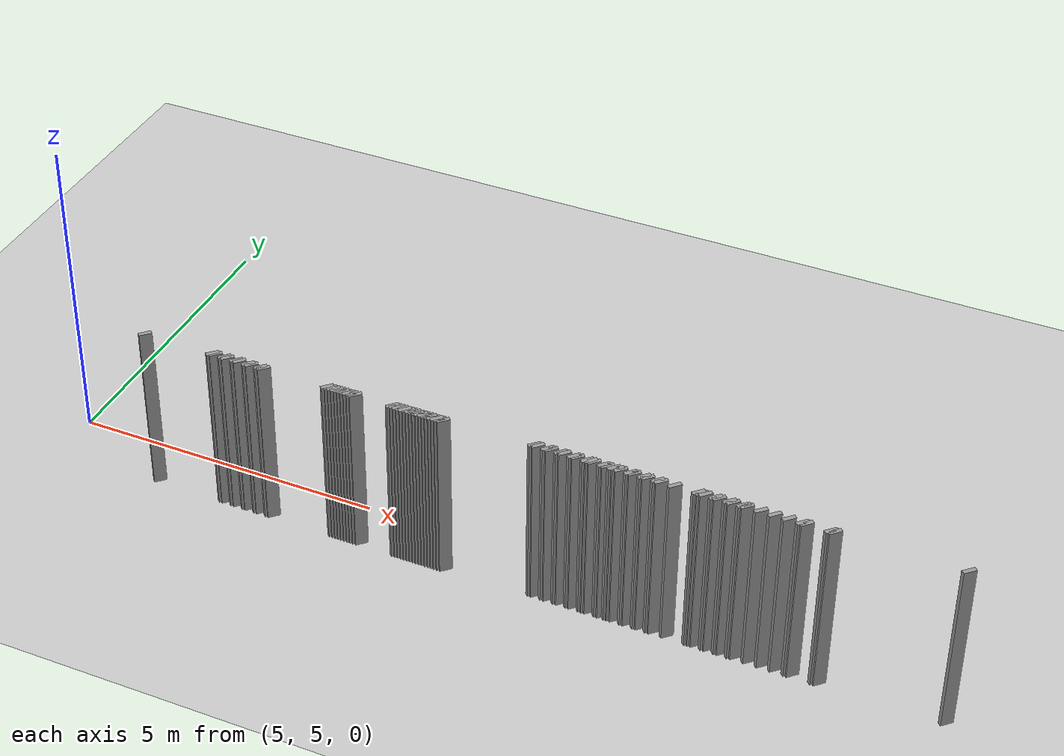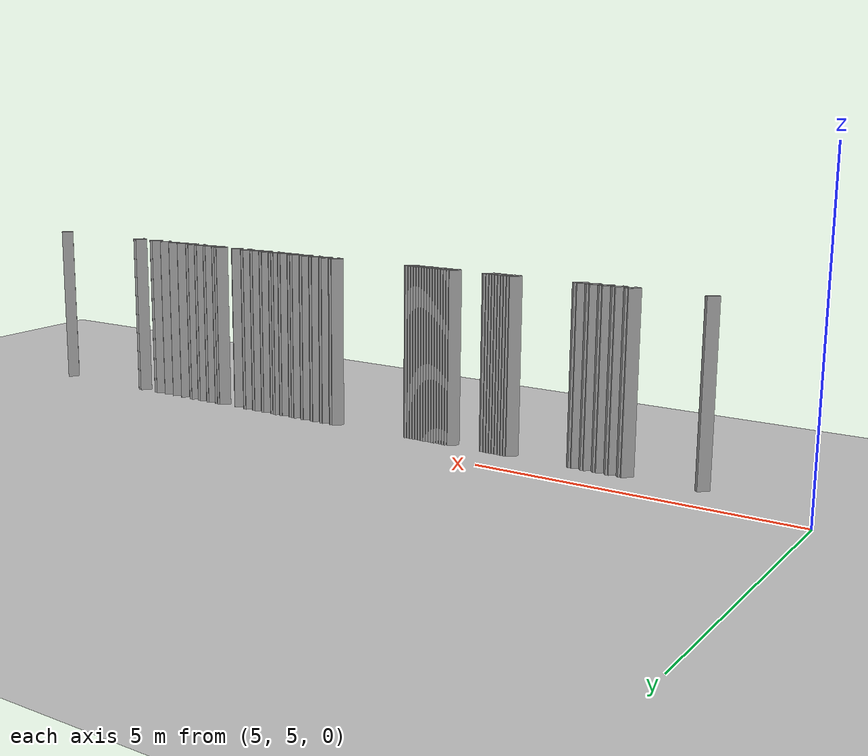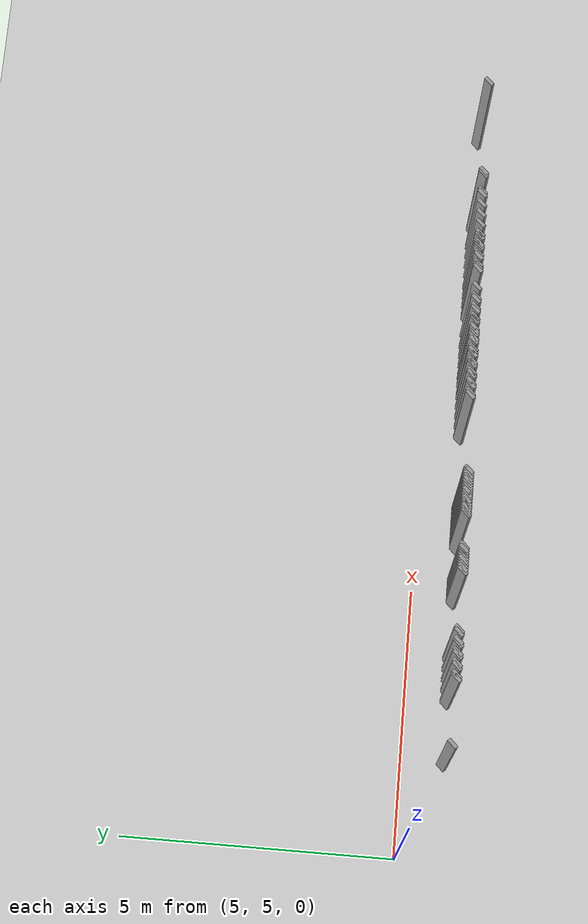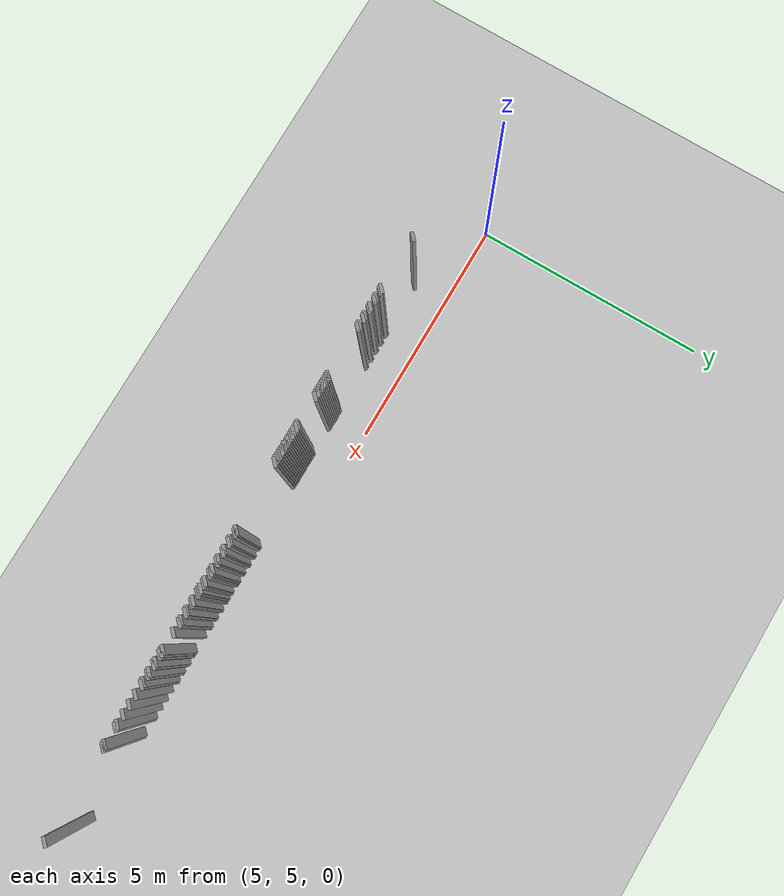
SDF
<sdf version="1.5">
 <world name="default">
  <include><uri>model://ground_plane</uri></include>
  <include><uri>model://sun</uri></include>
  <model name="grey_wall_2178">
   <static>1</static>
   <link name="link">
    <pose>13.05 4.3  1.4 0 0 -0.785398163397</pose>
    <collision name="collision"><geometry><box><size>0.0707106781187 .2  2.8</size></box></geometry></collision>
    <visual name="visual">
     <cast_shadows>0</cast_shadows>
     <geometry><box><size>0.0707106781187 .2  2.8</size></box></geometry>
     <material>
      <script>
       <uri>model://grey_wall/materials/scripts</uri>
       <uri>model://grey_wall/materials/textures</uri>
       <name>vrc/grey_wall</name>
      </script>
     </material>
    </visual>
   </link>
  </model>
  <model name="grey_wall_2179">
   <static>1</static>
   <link name="link">
    <pose>13.1 4.3  1.4 0 0 -0.785398163397</pose>
    <collision name="collision"><geometry><box><size>0.0707106781187 .2  2.8</size></box></geometry></collision>
    <visual name="visual">
     <cast_shadows>0</cast_shadows>
     <geometry><box><size>0.0707106781187 .2  2.8</size></box></geometry>
     <material>
      <script>
       <uri>model://grey_wall/materials/scripts</uri>
       <uri>model://grey_wall/materials/textures</uri>
       <name>vrc/grey_wall</name>
      </script>
     </material>
    </visual>
   </link>
  </model>
  <model name="grey_wall_2180">
   <static>1</static>
   <link name="link">
    <pose>13.25 4.3  1.4 0 0 -0.785398163397</pose>
    <collision name="collision"><geometry><box><size>0.0707106781187 .2  2.8</size></box></geometry></collision>
    <visual name="visual">
     <cast_shadows>0</cast_shadows>
     <geometry><box><size>0.0707106781187 .2  2.8</size></box></geometry>
     <material>
      <script>
       <uri>model://grey_wall/materials/scripts</uri>
       <uri>model://grey_wall/materials/textures</uri>
       <name>vrc/grey_wall</name>
      </script>
     </material>
    </visual>
   </link>
  </model>
  <model name="grey_wall_2181">
   <static>1</static>
   <link name="link">
    <pose>13.3 4.3  1.4 0 0 -0.785398163397</pose>
    <collision name="collision"><geometry><box><size>0.0707106781187 .2  2.8</size></box></geometry></collision>
    <visual name="visual">
     <cast_shadows>0</cast_shadows>
     <geometry><box><size>0.0707106781187 .2  2.8</size></box></geometry>
     <material>
      <script>
       <uri>model://grey_wall/materials/scripts</uri>
       <uri>model://grey_wall/materials/textures</uri>
       <name>vrc/grey_wall</name>
      </script>
     </material>
    </visual>
   </link>
  </model>
  <model name="grey_wall_2182">
   <static>1</static>
   <link name="link">
    <pose>13.45 4.3  1.4 0 0 -0.785398163397</pose>
    <collision name="collision"><geometry><box><size>0.0707106781187 .2  2.8</size></box></geometry></collision>
    <visual name="visual">
     <cast_shadows>0</cast_shadows>
     <geometry><box><size>0.0707106781187 .2  2.8</size></box></geometry>
     <material>
      <script>
       <uri>model://grey_wall/materials/scripts</uri>
       <uri>model://grey_wall/materials/textures</uri>
       <name>vrc/grey_wall</name>
      </script>
     </material>
    </visual>
   </link>
  </model>
  <model name="grey_wall_2183">
   <static>1</static>
   <link name="link">
    <pose>13.5 4.3  1.4 0 0 -0.785398163397</pose>
    <collision name="collision"><geometry><box><size>0.0707106781187 .2  2.8</size></box></geometry></collision>
    <visual name="visual">
     <cast_shadows>0</cast_shadows>
     <geometry><box><size>0.0707106781187 .2  2.8</size></box></geometry>
     <material>
      <script>
       <uri>model://grey_wall/materials/scripts</uri>
       <uri>model://grey_wall/materials/textures</uri>
       <name>vrc/grey_wall</name>
      </script>
     </material>
    </visual>
   </link>
  </model>
  <model name="grey_wall_2184">
   <static>1</static>
   <link name="link">
    <pose>13.65 4.3  1.4 0 0 -0.785398163397</pose>
    <collision name="collision"><geometry><box><size>0.0707106781187 .2  2.8</size></box></geometry></collision>
    <visual name="visual">
     <cast_shadows>0</cast_shadows>
     <geometry><box><size>0.0707106781187 .2  2.8</size></box></geometry>
     <material>
      <script>
       <uri>model://grey_wall/materials/scripts</uri>
       <uri>model://grey_wall/materials/textures</uri>
       <name>vrc/grey_wall</name>
      </script>
     </material>
    </visual>
   </link>
  </model>
  <model name="grey_wall_2185">
   <static>1</static>
   <link name="link">
    <pose>13.7 4.3  1.4 0 0 -0.785398163397</pose>
    <collision name="collision"><geometry><box><size>0.0707106781187 .2  2.8</size></box></geometry></collision>
    <visual name="visual">
     <cast_shadows>0</cast_shadows>
     <geometry><box><size>0.0707106781187 .2  2.8</size></box></geometry>
     <material>
      <script>
       <uri>model://grey_wall/materials/scripts</uri>
       <uri>model://grey_wall/materials/textures</uri>
       <name>vrc/grey_wall</name>
      </script>
     </material>
    </visual>
   </link>
  </model>
  <model name="grey_wall_2186">
   <static>1</static>
   <link name="link">
    <pose>13.85 4.3  1.4 0 0 -0.785398163397</pose>
    <collision name="collision"><geometry><box><size>0.0707106781187 .2  2.8</size></box></geometry></collision>
    <visual name="visual">
     <cast_shadows>0</cast_shadows>
     <geometry><box><size>0.0707106781187 .2  2.8</size></box></geometry>
     <material>
      <script>
       <uri>model://grey_wall/materials/scripts</uri>
       <uri>model://grey_wall/materials/textures</uri>
       <name>vrc/grey_wall</name>
      </script>
     </material>
    </visual>
   </link>
  </model>
  <model name="grey_wall_2187">
   <static>1</static>
   <link name="link">
    <pose>13.9 4.3  1.4 0 0 -0.785398163397</pose>
    <collision name="collision"><geometry><box><size>0.0707106781187 .2  2.8</size></box></geometry></collision>
    <visual name="visual">
     <cast_shadows>0</cast_shadows>
     <geometry><box><size>0.0707106781187 .2  2.8</size></box></geometry>
     <material>
      <script>
       <uri>model://grey_wall/materials/scripts</uri>
       <uri>model://grey_wall/materials/textures</uri>
       <name>vrc/grey_wall</name>
      </script>
     </material>
    </visual>
   </link>
  </model>
  <model name="grey_wall_2188">
   <static>1</static>
   <link name="link">
    <pose>13.95 4.3  1.4 0 0 -0.785398163397</pose>
    <collision name="collision"><geometry><box><size>0.0707106781187 .2  2.8</size></box></geometry></collision>
    <visual name="visual">
     <cast_shadows>0</cast_shadows>
     <geometry><box><size>0.0707106781187 .2  2.8</size></box></geometry>
     <material>
      <script>
       <uri>model://grey_wall/materials/scripts</uri>
       <uri>model://grey_wall/materials/textures</uri>
       <name>vrc/grey_wall</name>
      </script>
     </material>
    </visual>
   </link>
  </model>
  <model name="grey_wall_2189">
   <static>1</static>
   <link name="link">
    <pose>14.1 4.3  1.4 0 0 -0.785398163397</pose>
    <collision name="collision"><geometry><box><size>0.0707106781187 .2  2.8</size></box></geometry></collision>
    <visual name="visual">
     <cast_shadows>0</cast_shadows>
     <geometry><box><size>0.0707106781187 .2  2.8</size></box></geometry>
     <material>
      <script>
       <uri>model://grey_wall/materials/scripts</uri>
       <uri>model://grey_wall/materials/textures</uri>
       <name>vrc/grey_wall</name>
      </script>
     </material>
    </visual>
   </link>
  </model>
  <model name="grey_wall_2190">
   <static>1</static>
   <link name="link">
    <pose>14.15 4.3  1.4 0 0 -0.785398163397</pose>
    <collision name="collision"><geometry><box><size>0.0707106781187 .2  2.8</size></box></geometry></collision>
    <visual name="visual">
     <cast_shadows>0</cast_shadows>
     <geometry><box><size>0.0707106781187 .2  2.8</size></box></geometry>
     <material>
      <script>
       <uri>model://grey_wall/materials/scripts</uri>
       <uri>model://grey_wall/materials/textures</uri>
       <name>vrc/grey_wall</name>
      </script>
     </material>
    </visual>
   </link>
  </model>
  <model name="grey_wall_2191">
   <static>1</static>
   <link name="link">
    <pose>14.25 4.3  1.4 0 0 -0.785398163397</pose>
    <collision name="collision"><geometry><box><size>0.0707106781187 .2  2.8</size></box></geometry></collision>
    <visual name="visual">
     <cast_shadows>0</cast_shadows>
     <geometry><box><size>0.0707106781187 .2  2.8</size></box></geometry>
     <material>
      <script>
       <uri>model://grey_wall/materials/scripts</uri>
       <uri>model://grey_wall/materials/textures</uri>
       <name>vrc/grey_wall</name>
      </script>
     </material>
    </visual>
   </link>
  </model>
  <model name="grey_wall_2192">
   <static>1</static>
   <link name="link">
    <pose>14.3 4.3  1.4 0 0 -0.785398163397</pose>
    <collision name="collision"><geometry><box><size>0.0707106781187 .2  2.8</size></box></geometry></collision>
    <visual name="visual">
     <cast_shadows>0</cast_shadows>
     <geometry><box><size>0.0707106781187 .2  2.8</size></box></geometry>
     <material>
      <script>
       <uri>model://grey_wall/materials/scripts</uri>
       <uri>model://grey_wall/materials/textures</uri>
       <name>vrc/grey_wall</name>
      </script>
     </material>
    </visual>
   </link>
  </model>
  <model name="grey_wall_2193">
   <static>1</static>
   <link name="link">
    <pose>14.35 4.3  1.4 0 0 -0.785398163397</pose>
    <collision name="collision"><geometry><box><size>0.0707106781187 .2  2.8</size></box></geometry></collision>
    <visual name="visual">
     <cast_shadows>0</cast_shadows>
     <geometry><box><size>0.0707106781187 .2  2.8</size></box></geometry>
     <material>
      <script>
       <uri>model://grey_wall/materials/scripts</uri>
       <uri>model://grey_wall/materials/textures</uri>
       <name>vrc/grey_wall</name>
      </script>
     </material>
    </visual>
   </link>
  </model>
  <model name="grey_wall_2194">
   <static>1</static>
   <link name="link">
    <pose>14.5 4.3  1.4 0 0 -0.785398163397</pose>
    <collision name="collision"><geometry><box><size>0.0707106781187 .2  2.8</size></box></geometry></collision>
    <visual name="visual">
     <cast_shadows>0</cast_shadows>
     <geometry><box><size>0.0707106781187 .2  2.8</size></box></geometry>
     <material>
      <script>
       <uri>model://grey_wall/materials/scripts</uri>
       <uri>model://grey_wall/materials/textures</uri>
       <name>vrc/grey_wall</name>
      </script>
     </material>
    </visual>
   </link>
  </model>
  <model name="grey_wall_2195">
   <static>1</static>
   <link name="link">
    <pose>14.55 4.3  1.4 0 0 -0.785398163397</pose>
    <collision name="collision"><geometry><box><size>0.0707106781187 .2  2.8</size></box></geometry></collision>
    <visual name="visual">
     <cast_shadows>0</cast_shadows>
     <geometry><box><size>0.0707106781187 .2  2.8</size></box></geometry>
     <material>
      <script>
       <uri>model://grey_wall/materials/scripts</uri>
       <uri>model://grey_wall/materials/textures</uri>
       <name>vrc/grey_wall</name>
      </script>
     </material>
    </visual>
   </link>
  </model>
  <model name="grey_wall_2196">
   <static>1</static>
   <link name="link">
    <pose>14.7 4.3  1.4 0 0 -0.785398163397</pose>
    <collision name="collision"><geometry><box><size>0.0707106781187 .2  2.8</size></box></geometry></collision>
    <visual name="visual">
     <cast_shadows>0</cast_shadows>
     <geometry><box><size>0.0707106781187 .2  2.8</size></box></geometry>
     <material>
      <script>
       <uri>model://grey_wall/materials/scripts</uri>
       <uri>model://grey_wall/materials/textures</uri>
       <name>vrc/grey_wall</name>
      </script>
     </material>
    </visual>
   </link>
  </model>
  <model name="grey_wall_2197">
   <static>1</static>
   <link name="link">
    <pose>14.75 4.3  1.4 0 0 -0.785398163397</pose>
    <collision name="collision"><geometry><box><size>0.0707106781187 .2  2.8</size></box></geometry></collision>
    <visual name="visual">
     <cast_shadows>0</cast_shadows>
     <geometry><box><size>0.0707106781187 .2  2.8</size></box></geometry>
     <material>
      <script>
       <uri>model://grey_wall/materials/scripts</uri>
       <uri>model://grey_wall/materials/textures</uri>
       <name>vrc/grey_wall</name>
      </script>
     </material>
    </visual>
   </link>
  </model>
  <model name="grey_wall_2198">
   <static>1</static>
   <link name="link">
    <pose>14.9 4.3  1.4 0 0 -0.785398163397</pose>
    <collision name="collision"><geometry><box><size>0.0707106781187 .2  2.8</size></box></geometry></collision>
    <visual name="visual">
     <cast_shadows>0</cast_shadows>
     <geometry><box><size>0.0707106781187 .2  2.8</size></box></geometry>
     <material>
      <script>
       <uri>model://grey_wall/materials/scripts</uri>
       <uri>model://grey_wall/materials/textures</uri>
       <name>vrc/grey_wall</name>
      </script>
     </material>
    </visual>
   </link>
  </model>
  <model name="grey_wall_2199">
   <static>1</static>
   <link name="link">
    <pose>14.95 4.3  1.4 0 0 -0.785398163397</pose>
    <collision name="collision"><geometry><box><size>0.0707106781187 .2  2.8</size></box></geometry></collision>
    <visual name="visual">
     <cast_shadows>0</cast_shadows>
     <geometry><box><size>0.0707106781187 .2  2.8</size></box></geometry>
     <material>
      <script>
       <uri>model://grey_wall/materials/scripts</uri>
       <uri>model://grey_wall/materials/textures</uri>
       <name>vrc/grey_wall</name>
      </script>
     </material>
    </visual>
   </link>
  </model>
  <model name="grey_wall_2200">
   <static>1</static>
   <link name="link">
    <pose>15.15 4.3  1.4 0 0 -0.785398163397</pose>
    <collision name="collision"><geometry><box><size>0.0707106781187 .2  2.8</size></box></geometry></collision>
    <visual name="visual">
     <cast_shadows>0</cast_shadows>
     <geometry><box><size>0.0707106781187 .2  2.8</size></box></geometry>
     <material>
      <script>
       <uri>model://grey_wall/materials/scripts</uri>
       <uri>model://grey_wall/materials/textures</uri>
       <name>vrc/grey_wall</name>
      </script>
     </material>
    </visual>
   </link>
  </model>
  <model name="grey_wall_2201">
   <static>1</static>
   <link name="link">
    <pose>15.5 4.3  1.4 0 0 -0.785398163397</pose>
    <collision name="collision"><geometry><box><size>0.0707106781187 .2  2.8</size></box></geometry></collision>
    <visual name="visual">
     <cast_shadows>0</cast_shadows>
     <geometry><box><size>0.0707106781187 .2  2.8</size></box></geometry>
     <material>
      <script>
       <uri>model://grey_wall/materials/scripts</uri>
       <uri>model://grey_wall/materials/textures</uri>
       <name>vrc/grey_wall</name>
      </script>
     </material>
    </visual>
   </link>
  </model>
  <model name="grey_wall_2202">
   <static>1</static>
   <link name="link">
    <pose>15.55 4.3  1.4 0 0 -0.785398163397</pose>
    <collision name="collision"><geometry><box><size>0.0707106781187 .2  2.8</size></box></geometry></collision>
    <visual name="visual">
     <cast_shadows>0</cast_shadows>
     <geometry><box><size>0.0707106781187 .2  2.8</size></box></geometry>
     <material>
      <script>
       <uri>model://grey_wall/materials/scripts</uri>
       <uri>model://grey_wall/materials/textures</uri>
       <name>vrc/grey_wall</name>
      </script>
     </material>
    </visual>
   </link>
  </model>
  <model name="grey_wall_2203">
   <static>1</static>
   <link name="link">
    <pose>15.6 4.3  1.4 0 0 -0.785398163397</pose>
    <collision name="collision"><geometry><box><size>0.0707106781187 .2  2.8</size></box></geometry></collision>
    <visual name="visual">
     <cast_shadows>0</cast_shadows>
     <geometry><box><size>0.0707106781187 .2  2.8</size></box></geometry>
     <material>
      <script>
       <uri>model://grey_wall/materials/scripts</uri>
       <uri>model://grey_wall/materials/textures</uri>
       <name>vrc/grey_wall</name>
      </script>
     </material>
    </visual>
   </link>
  </model>
  <model name="grey_wall_2204">
   <static>1</static>
   <link name="link">
    <pose>15.75 4.3  1.4 0 0 -0.785398163397</pose>
    <collision name="collision"><geometry><box><size>0.0707106781187 .2  2.8</size></box></geometry></collision>
    <visual name="visual">
     <cast_shadows>0</cast_shadows>
     <geometry><box><size>0.0707106781187 .2  2.8</size></box></geometry>
     <material>
      <script>
       <uri>model://grey_wall/materials/scripts</uri>
       <uri>model://grey_wall/materials/textures</uri>
       <name>vrc/grey_wall</name>
      </script>
     </material>
    </visual>
   </link>
  </model>
  <model name="grey_wall_2205">
   <static>1</static>
   <link name="link">
    <pose>15.8 4.3  1.4 0 0 -0.785398163397</pose>
    <collision name="collision"><geometry><box><size>0.0707106781187 .2  2.8</size></box></geometry></collision>
    <visual name="visual">
     <cast_shadows>0</cast_shadows>
     <geometry><box><size>0.0707106781187 .2  2.8</size></box></geometry>
     <material>
      <script>
       <uri>model://grey_wall/materials/scripts</uri>
       <uri>model://grey_wall/materials/textures</uri>
       <name>vrc/grey_wall</name>
      </script>
     </material>
    </visual>
   </link>
  </model>
  <model name="grey_wall_2206">
   <static>1</static>
   <link name="link">
    <pose>15.95 4.3  1.4 0 0 -0.785398163397</pose>
    <collision name="collision"><geometry><box><size>0.0707106781187 .2  2.8</size></box></geometry></collision>
    <visual name="visual">
     <cast_shadows>0</cast_shadows>
     <geometry><box><size>0.0707106781187 .2  2.8</size></box></geometry>
     <material>
      <script>
       <uri>model://grey_wall/materials/scripts</uri>
       <uri>model://grey_wall/materials/textures</uri>
       <name>vrc/grey_wall</name>
      </script>
     </material>
    </visual>
   </link>
  </model>
  <model name="grey_wall_2207">
   <static>1</static>
   <link name="link">
    <pose>16.0 4.3  1.4 0 0 -0.785398163397</pose>
    <collision name="collision"><geometry><box><size>0.0707106781187 .2  2.8</size></box></geometry></collision>
    <visual name="visual">
     <cast_shadows>0</cast_shadows>
     <geometry><box><size>0.0707106781187 .2  2.8</size></box></geometry>
     <material>
      <script>
       <uri>model://grey_wall/materials/scripts</uri>
       <uri>model://grey_wall/materials/textures</uri>
       <name>vrc/grey_wall</name>
      </script>
     </material>
    </visual>
   </link>
  </model>
  <model name="grey_wall_2208">
   <static>1</static>
   <link name="link">
    <pose>16.15 4.3  1.4 0 0 -0.785398163397</pose>
    <collision name="collision"><geometry><box><size>0.0707106781187 .2  2.8</size></box></geometry></collision>
    <visual name="visual">
     <cast_shadows>0</cast_shadows>
     <geometry><box><size>0.0707106781187 .2  2.8</size></box></geometry>
     <material>
      <script>
       <uri>model://grey_wall/materials/scripts</uri>
       <uri>model://grey_wall/materials/textures</uri>
       <name>vrc/grey_wall</name>
      </script>
     </material>
    </visual>
   </link>
  </model>
  <model name="grey_wall_2209">
   <static>1</static>
   <link name="link">
    <pose>16.2 4.3  1.4 0 0 -0.785398163397</pose>
    <collision name="collision"><geometry><box><size>0.0707106781187 .2  2.8</size></box></geometry></collision>
    <visual name="visual">
     <cast_shadows>0</cast_shadows>
     <geometry><box><size>0.0707106781187 .2  2.8</size></box></geometry>
     <material>
      <script>
       <uri>model://grey_wall/materials/scripts</uri>
       <uri>model://grey_wall/materials/textures</uri>
       <name>vrc/grey_wall</name>
      </script>
     </material>
    </visual>
   </link>
  </model>
  <model name="grey_wall_2210">
   <static>1</static>
   <link name="link">
    <pose>16.4 4.3  1.4 0 0 -0.785398163397</pose>
    <collision name="collision"><geometry><box><size>0.0707106781187 .2  2.8</size></box></geometry></collision>
    <visual name="visual">
     <cast_shadows>0</cast_shadows>
     <geometry><box><size>0.0707106781187 .2  2.8</size></box></geometry>
     <material>
      <script>
       <uri>model://grey_wall/materials/scripts</uri>
       <uri>model://grey_wall/materials/textures</uri>
       <name>vrc/grey_wall</name>
      </script>
     </material>
    </visual>
   </link>
  </model>
  <model name="grey_wall_2211">
   <static>1</static>
   <link name="link">
    <pose>16.6 4.3  1.4 0 0 -0.785398163397</pose>
    <collision name="collision"><geometry><box><size>0.0707106781187 .2  2.8</size></box></geometry></collision>
    <visual name="visual">
     <cast_shadows>0</cast_shadows>
     <geometry><box><size>0.0707106781187 .2  2.8</size></box></geometry>
     <material>
      <script>
       <uri>model://grey_wall/materials/scripts</uri>
       <uri>model://grey_wall/materials/textures</uri>
       <name>vrc/grey_wall</name>
      </script>
     </material>
    </visual>
   </link>
  </model>
  <model name="grey_wall_2212">
   <static>1</static>
   <link name="link">
    <pose>16.8 4.3  1.4 0 0 -0.785398163397</pose>
    <collision name="collision"><geometry><box><size>0.0707106781187 .2  2.8</size></box></geometry></collision>
    <visual name="visual">
     <cast_shadows>0</cast_shadows>
     <geometry><box><size>0.0707106781187 .2  2.8</size></box></geometry>
     <material>
      <script>
       <uri>model://grey_wall/materials/scripts</uri>
       <uri>model://grey_wall/materials/textures</uri>
       <name>vrc/grey_wall</name>
      </script>
     </material>
    </visual>
   </link>
  </model>
  <model name="grey_wall_2213">
   <static>1</static>
   <link name="link">
    <pose>17.0 4.3  1.4 0 0 -0.785398163397</pose>
    <collision name="collision"><geometry><box><size>0.0707106781187 .2  2.8</size></box></geometry></collision>
    <visual name="visual">
     <cast_shadows>0</cast_shadows>
     <geometry><box><size>0.0707106781187 .2  2.8</size></box></geometry>
     <material>
      <script>
       <uri>model://grey_wall/materials/scripts</uri>
       <uri>model://grey_wall/materials/textures</uri>
       <name>vrc/grey_wall</name>
      </script>
     </material>
    </visual>
   </link>
  </model>
  <model name="grey_wall_2214">
   <static>1</static>
   <link name="link">
    <pose>17.05 4.3  1.4 0 0 -0.785398163397</pose>
    <collision name="collision"><geometry><box><size>0.0707106781187 .2  2.8</size></box></geometry></collision>
    <visual name="visual">
     <cast_shadows>0</cast_shadows>
     <geometry><box><size>0.0707106781187 .2  2.8</size></box></geometry>
     <material>
      <script>
       <uri>model://grey_wall/materials/scripts</uri>
       <uri>model://grey_wall/materials/textures</uri>
       <name>vrc/grey_wall</name>
      </script>
     </material>
    </visual>
   </link>
  </model>
  <model name="grey_wall_2215">
   <static>1</static>
   <link name="link">
    <pose>17.4 4.3  1.4 0 0 -0.785398163397</pose>
    <collision name="collision"><geometry><box><size>0.0707106781187 .2  2.8</size></box></geometry></collision>
    <visual name="visual">
     <cast_shadows>0</cast_shadows>
     <geometry><box><size>0.0707106781187 .2  2.8</size></box></geometry>
     <material>
      <script>
       <uri>model://grey_wall/materials/scripts</uri>
       <uri>model://grey_wall/materials/textures</uri>
       <name>vrc/grey_wall</name>
      </script>
     </material>
    </visual>
   </link>
  </model>
  <model name="grey_wall_2216">
   <static>1</static>
   <link name="link">
    <pose>17.45 4.3  1.4 0 0 -0.785398163397</pose>
    <collision name="collision"><geometry><box><size>0.0707106781187 .2  2.8</size></box></geometry></collision>
    <visual name="visual">
     <cast_shadows>0</cast_shadows>
     <geometry><box><size>0.0707106781187 .2  2.8</size></box></geometry>
     <material>
      <script>
       <uri>model://grey_wall/materials/scripts</uri>
       <uri>model://grey_wall/materials/textures</uri>
       <name>vrc/grey_wall</name>
      </script>
     </material>
    </visual>
   </link>
  </model>
  <model name="grey_wall_2217">
   <static>1</static>
   <link name="link">
    <pose>19.3 4.3  1.4 0 0 -0.785398163397</pose>
    <collision name="collision"><geometry><box><size>0.0707106781187 .2  2.8</size></box></geometry></collision>
    <visual name="visual">
     <cast_shadows>0</cast_shadows>
     <geometry><box><size>0.0707106781187 .2  2.8</size></box></geometry>
     <material>
      <script>
       <uri>model://grey_wall/materials/scripts</uri>
       <uri>model://grey_wall/materials/textures</uri>
       <name>vrc/grey_wall</name>
      </script>
     </material>
    </visual>
   </link>
  </model>
  <model name="grey_wall_2218">
   <static>1</static>
   <link name="link">
    <pose>6.75 4.25  1.4 0 0 -0.785398163397</pose>
    <collision name="collision"><geometry><box><size>0.0707106781187 .2  2.8</size></box></geometry></collision>
    <visual name="visual">
     <cast_shadows>0</cast_shadows>
     <geometry><box><size>0.0707106781187 .2  2.8</size></box></geometry>
     <material>
      <script>
       <uri>model://grey_wall/materials/scripts</uri>
       <uri>model://grey_wall/materials/textures</uri>
       <name>vrc/grey_wall</name>
      </script>
     </material>
    </visual>
   </link>
  </model>
  <model name="grey_wall_2219">
   <static>1</static>
   <link name="link">
    <pose>7.9 4.25  1.4 0 0 -0.785398163397</pose>
    <collision name="collision"><geometry><box><size>0.0707106781187 .2  2.8</size></box></geometry></collision>
    <visual name="visual">
     <cast_shadows>0</cast_shadows>
     <geometry><box><size>0.0707106781187 .2  2.8</size></box></geometry>
     <material>
      <script>
       <uri>model://grey_wall/materials/scripts</uri>
       <uri>model://grey_wall/materials/textures</uri>
       <name>vrc/grey_wall</name>
      </script>
     </material>
    </visual>
   </link>
  </model>
  <model name="grey_wall_2220">
   <static>1</static>
   <link name="link">
    <pose>7.95 4.25  1.4 0 0 -0.785398163397</pose>
    <collision name="collision"><geometry><box><size>0.0707106781187 .2  2.8</size></box></geometry></collision>
    <visual name="visual">
     <cast_shadows>0</cast_shadows>
     <geometry><box><size>0.0707106781187 .2  2.8</size></box></geometry>
     <material>
      <script>
       <uri>model://grey_wall/materials/scripts</uri>
       <uri>model://grey_wall/materials/textures</uri>
       <name>vrc/grey_wall</name>
      </script>
     </material>
    </visual>
   </link>
  </model>
  <model name="grey_wall_2221">
   <static>1</static>
   <link name="link">
    <pose>8.1 4.25  1.4 0 0 -0.785398163397</pose>
    <collision name="collision"><geometry><box><size>0.0707106781187 .2  2.8</size></box></geometry></collision>
    <visual name="visual">
     <cast_shadows>0</cast_shadows>
     <geometry><box><size>0.0707106781187 .2  2.8</size></box></geometry>
     <material>
      <script>
       <uri>model://grey_wall/materials/scripts</uri>
       <uri>model://grey_wall/materials/textures</uri>
       <name>vrc/grey_wall</name>
      </script>
     </material>
    </visual>
   </link>
  </model>
  <model name="grey_wall_2222">
   <static>1</static>
   <link name="link">
    <pose>8.15 4.25  1.4 0 0 -0.785398163397</pose>
    <collision name="collision"><geometry><box><size>0.0707106781187 .2  2.8</size></box></geometry></collision>
    <visual name="visual">
     <cast_shadows>0</cast_shadows>
     <geometry><box><size>0.0707106781187 .2  2.8</size></box></geometry>
     <material>
      <script>
       <uri>model://grey_wall/materials/scripts</uri>
       <uri>model://grey_wall/materials/textures</uri>
       <name>vrc/grey_wall</name>
      </script>
     </material>
    </visual>
   </link>
  </model>
  <model name="grey_wall_2223">
   <static>1</static>
   <link name="link">
    <pose>8.3 4.25  1.4 0 0 -0.785398163397</pose>
    <collision name="collision"><geometry><box><size>0.0707106781187 .2  2.8</size></box></geometry></collision>
    <visual name="visual">
     <cast_shadows>0</cast_shadows>
     <geometry><box><size>0.0707106781187 .2  2.8</size></box></geometry>
     <material>
      <script>
       <uri>model://grey_wall/materials/scripts</uri>
       <uri>model://grey_wall/materials/textures</uri>
       <name>vrc/grey_wall</name>
      </script>
     </material>
    </visual>
   </link>
  </model>
  <model name="grey_wall_2224">
   <static>1</static>
   <link name="link">
    <pose>8.35 4.25  1.4 0 0 -0.785398163397</pose>
    <collision name="collision"><geometry><box><size>0.0707106781187 .2  2.8</size></box></geometry></collision>
    <visual name="visual">
     <cast_shadows>0</cast_shadows>
     <geometry><box><size>0.0707106781187 .2  2.8</size></box></geometry>
     <material>
      <script>
       <uri>model://grey_wall/materials/scripts</uri>
       <uri>model://grey_wall/materials/textures</uri>
       <name>vrc/grey_wall</name>
      </script>
     </material>
    </visual>
   </link>
  </model>
  <model name="grey_wall_2225">
   <static>1</static>
   <link name="link">
    <pose>8.5 4.25  1.4 0 0 -0.785398163397</pose>
    <collision name="collision"><geometry><box><size>0.0707106781187 .2  2.8</size></box></geometry></collision>
    <visual name="visual">
     <cast_shadows>0</cast_shadows>
     <geometry><box><size>0.0707106781187 .2  2.8</size></box></geometry>
     <material>
      <script>
       <uri>model://grey_wall/materials/scripts</uri>
       <uri>model://grey_wall/materials/textures</uri>
       <name>vrc/grey_wall</name>
      </script>
     </material>
    </visual>
   </link>
  </model>
  <model name="grey_wall_2226">
   <static>1</static>
   <link name="link">
    <pose>8.55 4.25  1.4 0 0 -0.785398163397</pose>
    <collision name="collision"><geometry><box><size>0.0707106781187 .2  2.8</size></box></geometry></collision>
    <visual name="visual">
     <cast_shadows>0</cast_shadows>
     <geometry><box><size>0.0707106781187 .2  2.8</size></box></geometry>
     <material>
      <script>
       <uri>model://grey_wall/materials/scripts</uri>
       <uri>model://grey_wall/materials/textures</uri>
       <name>vrc/grey_wall</name>
      </script>
     </material>
    </visual>
   </link>
  </model>
  <model name="grey_wall_2227">
   <static>1</static>
   <link name="link">
    <pose>8.7 4.25  1.4 0 0 -0.785398163397</pose>
    <collision name="collision"><geometry><box><size>0.0707106781187 .2  2.8</size></box></geometry></collision>
    <visual name="visual">
     <cast_shadows>0</cast_shadows>
     <geometry><box><size>0.0707106781187 .2  2.8</size></box></geometry>
     <material>
      <script>
       <uri>model://grey_wall/materials/scripts</uri>
       <uri>model://grey_wall/materials/textures</uri>
       <name>vrc/grey_wall</name>
      </script>
     </material>
    </visual>
   </link>
  </model>
  <model name="grey_wall_2228">
   <static>1</static>
   <link name="link">
    <pose>8.75 4.25  1.4 0 0 -0.785398163397</pose>
    <collision name="collision"><geometry><box><size>0.0707106781187 .2  2.8</size></box></geometry></collision>
    <visual name="visual">
     <cast_shadows>0</cast_shadows>
     <geometry><box><size>0.0707106781187 .2  2.8</size></box></geometry>
     <material>
      <script>
       <uri>model://grey_wall/materials/scripts</uri>
       <uri>model://grey_wall/materials/textures</uri>
       <name>vrc/grey_wall</name>
      </script>
     </material>
    </visual>
   </link>
  </model>
  <model name="grey_wall_2229">
   <static>1</static>
   <link name="link">
    <pose>9.8 4.25  1.4 0 0 -0.785398163397</pose>
    <collision name="collision"><geometry><box><size>0.0707106781187 .2  2.8</size></box></geometry></collision>
    <visual name="visual">
     <cast_shadows>0</cast_shadows>
     <geometry><box><size>0.0707106781187 .2  2.8</size></box></geometry>
     <material>
      <script>
       <uri>model://grey_wall/materials/scripts</uri>
       <uri>model://grey_wall/materials/textures</uri>
       <name>vrc/grey_wall</name>
      </script>
     </material>
    </visual>
   </link>
  </model>
  <model name="grey_wall_2230">
   <static>1</static>
   <link name="link">
    <pose>9.85 4.25  1.4 0 0 -0.785398163397</pose>
    <collision name="collision"><geometry><box><size>0.0707106781187 .2  2.8</size></box></geometry></collision>
    <visual name="visual">
     <cast_shadows>0</cast_shadows>
     <geometry><box><size>0.0707106781187 .2  2.8</size></box></geometry>
     <material>
      <script>
       <uri>model://grey_wall/materials/scripts</uri>
       <uri>model://grey_wall/materials/textures</uri>
       <name>vrc/grey_wall</name>
      </script>
     </material>
    </visual>
   </link>
  </model>
  <model name="grey_wall_2231">
   <static>1</static>
   <link name="link">
    <pose>9.9 4.25  1.4 0 0 -0.785398163397</pose>
    <collision name="collision"><geometry><box><size>0.0707106781187 .2  2.8</size></box></geometry></collision>
    <visual name="visual">
     <cast_shadows>0</cast_shadows>
     <geometry><box><size>0.0707106781187 .2  2.8</size></box></geometry>
     <material>
      <script>
       <uri>model://grey_wall/materials/scripts</uri>
       <uri>model://grey_wall/materials/textures</uri>
       <name>vrc/grey_wall</name>
      </script>
     </material>
    </visual>
   </link>
  </model>
  <model name="grey_wall_2232">
   <static>1</static>
   <link name="link">
    <pose>9.95 4.25  1.4 0 0 -0.785398163397</pose>
    <collision name="collision"><geometry><box><size>0.0707106781187 .2  2.8</size></box></geometry></collision>
    <visual name="visual">
     <cast_shadows>0</cast_shadows>
     <geometry><box><size>0.0707106781187 .2  2.8</size></box></geometry>
     <material>
      <script>
       <uri>model://grey_wall/materials/scripts</uri>
       <uri>model://grey_wall/materials/textures</uri>
       <name>vrc/grey_wall</name>
      </script>
     </material>
    </visual>
   </link>
  </model>
  <model name="grey_wall_2233">
   <static>1</static>
   <link name="link">
    <pose>10.0 4.25  1.4 0 0 -0.785398163397</pose>
    <collision name="collision"><geometry><box><size>0.0707106781187 .2  2.8</size></box></geometry></collision>
    <visual name="visual">
     <cast_shadows>0</cast_shadows>
     <geometry><box><size>0.0707106781187 .2  2.8</size></box></geometry>
     <material>
      <script>
       <uri>model://grey_wall/materials/scripts</uri>
       <uri>model://grey_wall/materials/textures</uri>
       <name>vrc/grey_wall</name>
      </script>
     </material>
    </visual>
   </link>
  </model>
  <model name="grey_wall_2234">
   <static>1</static>
   <link name="link">
    <pose>10.05 4.25  1.4 0 0 -0.785398163397</pose>
    <collision name="collision"><geometry><box><size>0.0707106781187 .2  2.8</size></box></geometry></collision>
    <visual name="visual">
     <cast_shadows>0</cast_shadows>
     <geometry><box><size>0.0707106781187 .2  2.8</size></box></geometry>
     <material>
      <script>
       <uri>model://grey_wall/materials/scripts</uri>
       <uri>model://grey_wall/materials/textures</uri>
       <name>vrc/grey_wall</name>
      </script>
     </material>
    </visual>
   </link>
  </model>
  <model name="grey_wall_2235">
   <static>1</static>
   <link name="link">
    <pose>10.1 4.25  1.4 0 0 -0.785398163397</pose>
    <collision name="collision"><geometry><box><size>0.0707106781187 .2  2.8</size></box></geometry></collision>
    <visual name="visual">
     <cast_shadows>0</cast_shadows>
     <geometry><box><size>0.0707106781187 .2  2.8</size></box></geometry>
     <material>
      <script>
       <uri>model://grey_wall/materials/scripts</uri>
       <uri>model://grey_wall/materials/textures</uri>
       <name>vrc/grey_wall</name>
      </script>
     </material>
    </visual>
   </link>
  </model>
  <model name="grey_wall_2236">
   <static>1</static>
   <link name="link">
    <pose>10.15 4.25  1.4 0 0 -0.785398163397</pose>
    <collision name="collision"><geometry><box><size>0.0707106781187 .2  2.8</size></box></geometry></collision>
    <visual name="visual">
     <cast_shadows>0</cast_shadows>
     <geometry><box><size>0.0707106781187 .2  2.8</size></box></geometry>
     <material>
      <script>
       <uri>model://grey_wall/materials/scripts</uri>
       <uri>model://grey_wall/materials/textures</uri>
       <name>vrc/grey_wall</name>
      </script>
     </material>
    </visual>
   </link>
  </model>
  <model name="grey_wall_2237">
   <static>1</static>
   <link name="link">
    <pose>10.2 4.25  1.4 0 0 -0.785398163397</pose>
    <collision name="collision"><geometry><box><size>0.0707106781187 .2  2.8</size></box></geometry></collision>
    <visual name="visual">
     <cast_shadows>0</cast_shadows>
     <geometry><box><size>0.0707106781187 .2  2.8</size></box></geometry>
     <material>
      <script>
       <uri>model://grey_wall/materials/scripts</uri>
       <uri>model://grey_wall/materials/textures</uri>
       <name>vrc/grey_wall</name>
      </script>
     </material>
    </visual>
   </link>
  </model>
  <model name="grey_wall_2238">
   <static>1</static>
   <link name="link">
    <pose>10.25 4.25  1.4 0 0 -0.785398163397</pose>
    <collision name="collision"><geometry><box><size>0.0707106781187 .2  2.8</size></box></geometry></collision>
    <visual name="visual">
     <cast_shadows>0</cast_shadows>
     <geometry><box><size>0.0707106781187 .2  2.8</size></box></geometry>
     <material>
      <script>
       <uri>model://grey_wall/materials/scripts</uri>
       <uri>model://grey_wall/materials/textures</uri>
       <name>vrc/grey_wall</name>
      </script>
     </material>
    </visual>
   </link>
  </model>
  <model name="grey_wall_2239">
   <static>1</static>
   <link name="link">
    <pose>10.85 4.25  1.4 0 0 -0.785398163397</pose>
    <collision name="collision"><geometry><box><size>0.0707106781187 .2  2.8</size></box></geometry></collision>
    <visual name="visual">
     <cast_shadows>0</cast_shadows>
     <geometry><box><size>0.0707106781187 .2  2.8</size></box></geometry>
     <material>
      <script>
       <uri>model://grey_wall/materials/scripts</uri>
       <uri>model://grey_wall/materials/textures</uri>
       <name>vrc/grey_wall</name>
      </script>
     </material>
    </visual>
   </link>
  </model>
  <model name="grey_wall_2240">
   <static>1</static>
   <link name="link">
    <pose>10.9 4.25  1.4 0 0 -0.785398163397</pose>
    <collision name="collision"><geometry><box><size>0.0707106781187 .2  2.8</size></box></geometry></collision>
    <visual name="visual">
     <cast_shadows>0</cast_shadows>
     <geometry><box><size>0.0707106781187 .2  2.8</size></box></geometry>
     <material>
      <script>
       <uri>model://grey_wall/materials/scripts</uri>
       <uri>model://grey_wall/materials/textures</uri>
       <name>vrc/grey_wall</name>
      </script>
     </material>
    </visual>
   </link>
  </model>
  <model name="grey_wall_2241">
   <static>1</static>
   <link name="link">
    <pose>10.95 4.25  1.4 0 0 -0.785398163397</pose>
    <collision name="collision"><geometry><box><size>0.0707106781187 .2  2.8</size></box></geometry></collision>
    <visual name="visual">
     <cast_shadows>0</cast_shadows>
     <geometry><box><size>0.0707106781187 .2  2.8</size></box></geometry>
     <material>
      <script>
       <uri>model://grey_wall/materials/scripts</uri>
       <uri>model://grey_wall/materials/textures</uri>
       <name>vrc/grey_wall</name>
      </script>
     </material>
    </visual>
   </link>
  </model>
  <model name="grey_wall_2242">
   <static>1</static>
   <link name="link">
    <pose>11.0 4.25  1.4 0 0 -0.785398163397</pose>
    <collision name="collision"><geometry><box><size>0.0707106781187 .2  2.8</size></box></geometry></collision>
    <visual name="visual">
     <cast_shadows>0</cast_shadows>
     <geometry><box><size>0.0707106781187 .2  2.8</size></box></geometry>
     <material>
      <script>
       <uri>model://grey_wall/materials/scripts</uri>
       <uri>model://grey_wall/materials/textures</uri>
       <name>vrc/grey_wall</name>
      </script>
     </material>
    </visual>
   </link>
  </model>
  <model name="grey_wall_2243">
   <static>1</static>
   <link name="link">
    <pose>11.05 4.25  1.4 0 0 -0.785398163397</pose>
    <collision name="collision"><geometry><box><size>0.0707106781187 .2  2.8</size></box></geometry></collision>
    <visual name="visual">
     <cast_shadows>0</cast_shadows>
     <geometry><box><size>0.0707106781187 .2  2.8</size></box></geometry>
     <material>
      <script>
       <uri>model://grey_wall/materials/scripts</uri>
       <uri>model://grey_wall/materials/textures</uri>
       <name>vrc/grey_wall</name>
      </script>
     </material>
    </visual>
   </link>
  </model>
  <model name="grey_wall_2244">
   <static>1</static>
   <link name="link">
    <pose>11.1 4.25  1.4 0 0 -0.785398163397</pose>
    <collision name="collision"><geometry><box><size>0.0707106781187 .2  2.8</size></box></geometry></collision>
    <visual name="visual">
     <cast_shadows>0</cast_shadows>
     <geometry><box><size>0.0707106781187 .2  2.8</size></box></geometry>
     <material>
      <script>
       <uri>model://grey_wall/materials/scripts</uri>
       <uri>model://grey_wall/materials/textures</uri>
       <name>vrc/grey_wall</name>
      </script>
     </material>
    </visual>
   </link>
  </model>
  <model name="grey_wall_2245">
   <static>1</static>
   <link name="link">
    <pose>11.15 4.25  1.4 0 0 -0.785398163397</pose>
    <collision name="collision"><geometry><box><size>0.0707106781187 .2  2.8</size></box></geometry></collision>
    <visual name="visual">
     <cast_shadows>0</cast_shadows>
     <geometry><box><size>0.0707106781187 .2  2.8</size></box></geometry>
     <material>
      <script>
       <uri>model://grey_wall/materials/scripts</uri>
       <uri>model://grey_wall/materials/textures</uri>
       <name>vrc/grey_wall</name>
      </script>
     </material>
    </visual>
   </link>
  </model>
  <model name="grey_wall_2246">
   <static>1</static>
   <link name="link">
    <pose>11.2 4.25  1.4 0 0 -0.785398163397</pose>
    <collision name="collision"><geometry><box><size>0.0707106781187 .2  2.8</size></box></geometry></collision>
    <visual name="visual">
     <cast_shadows>0</cast_shadows>
     <geometry><box><size>0.0707106781187 .2  2.8</size></box></geometry>
     <material>
      <script>
       <uri>model://grey_wall/materials/scripts</uri>
       <uri>model://grey_wall/materials/textures</uri>
       <name>vrc/grey_wall</name>
      </script>
     </material>
    </visual>
   </link>
  </model>
  <model name="grey_wall_2247">
   <static>1</static>
   <link name="link">
    <pose>11.25 4.25  1.4 0 0 -0.785398163397</pose>
    <collision name="collision"><geometry><box><size>0.0707106781187 .2  2.8</size></box></geometry></collision>
    <visual name="visual">
     <cast_shadows>0</cast_shadows>
     <geometry><box><size>0.0707106781187 .2  2.8</size></box></geometry>
     <material>
      <script>
       <uri>model://grey_wall/materials/scripts</uri>
       <uri>model://grey_wall/materials/textures</uri>
       <name>vrc/grey_wall</name>
      </script>
     </material>
    </visual>
   </link>
  </model>
  <model name="grey_wall_2248">
   <static>1</static>
   <link name="link">
    <pose>11.3 4.25  1.4 0 0 -0.785398163397</pose>
    <collision name="collision"><geometry><box><size>0.0707106781187 .2  2.8</size></box></geometry></collision>
    <visual name="visual">
     <cast_shadows>0</cast_shadows>
     <geometry><box><size>0.0707106781187 .2  2.8</size></box></geometry>
     <material>
      <script>
       <uri>model://grey_wall/materials/scripts</uri>
       <uri>model://grey_wall/materials/textures</uri>
       <name>vrc/grey_wall</name>
      </script>
     </material>
    </visual>
   </link>
  </model>
  <model name="grey_wall_2249">
   <static>1</static>
   <link name="link">
    <pose>11.35 4.25  1.4 0 0 -0.785398163397</pose>
    <collision name="collision"><geometry><box><size>0.0707106781187 .2  2.8</size></box></geometry></collision>
    <visual name="visual">
     <cast_shadows>0</cast_shadows>
     <geometry><box><size>0.0707106781187 .2  2.8</size></box></geometry>
     <material>
      <script>
       <uri>model://grey_wall/materials/scripts</uri>
       <uri>model://grey_wall/materials/textures</uri>
       <name>vrc/grey_wall</name>
      </script>
     </material>
    </visual>
   </link>
  </model>
  <model name="grey_wall_2250">
   <static>1</static>
   <link name="link">
    <pose>11.4 4.25  1.4 0 0 -0.785398163397</pose>
    <collision name="collision"><geometry><box><size>0.0707106781187 .2  2.8</size></box></geometry></collision>
    <visual name="visual">
     <cast_shadows>0</cast_shadows>
     <geometry><box><size>0.0707106781187 .2  2.8</size></box></geometry>
     <material>
      <script>
       <uri>model://grey_wall/materials/scripts</uri>
       <uri>model://grey_wall/materials/textures</uri>
       <name>vrc/grey_wall</name>
      </script>
     </material>
    </visual>
   </link>
  </model>
  <model name="grey_wall_2251">
   <static>1</static>
   <link name="link">
    <pose>11.45 4.25  1.4 0 0 -0.785398163397</pose>
    <collision name="collision"><geometry><box><size>0.0707106781187 .2  2.8</size></box></geometry></collision>
    <visual name="visual">
     <cast_shadows>0</cast_shadows>
     <geometry><box><size>0.0707106781187 .2  2.8</size></box></geometry>
     <material>
      <script>
       <uri>model://grey_wall/materials/scripts</uri>
       <uri>model://grey_wall/materials/textures</uri>
       <name>vrc/grey_wall</name>
      </script>
     </material>
    </visual>
   </link>
  </model>
  <model name="grey_wall_2252">
   <static>1</static>
   <link name="link">
    <pose>11.5 4.25  1.4 0 0 -0.785398163397</pose>
    <collision name="collision"><geometry><box><size>0.0707106781187 .2  2.8</size></box></geometry></collision>
    <visual name="visual">
     <cast_shadows>0</cast_shadows>
     <geometry><box><size>0.0707106781187 .2  2.8</size></box></geometry>
     <material>
      <script>
       <uri>model://grey_wall/materials/scripts</uri>
       <uri>model://grey_wall/materials/textures</uri>
       <name>vrc/grey_wall</name>
      </script>
     </material>
    </visual>
   </link>
  </model>
  <model name="grey_wall_2253">
   <static>1</static>
   <link name="link">
    <pose>11.55 4.25  1.4 0 0 -0.785398163397</pose>
    <collision name="collision"><geometry><box><size>0.0707106781187 .2  2.8</size></box></geometry></collision>
    <visual name="visual">
     <cast_shadows>0</cast_shadows>
     <geometry><box><size>0.0707106781187 .2  2.8</size></box></geometry>
     <material>
      <script>
       <uri>model://grey_wall/materials/scripts</uri>
       <uri>model://grey_wall/materials/textures</uri>
       <name>vrc/grey_wall</name>
      </script>
     </material>
    </visual>
   </link>
  </model>
  <model name="grey_wall_2254">
   <static>1</static>
   <link name="link">
    <pose>11.6 4.25  1.4 0 0 -0.785398163397</pose>
    <collision name="collision"><geometry><box><size>0.0707106781187 .2  2.8</size></box></geometry></collision>
    <visual name="visual">
     <cast_shadows>0</cast_shadows>
     <geometry><box><size>0.0707106781187 .2  2.8</size></box></geometry>
     <material>
      <script>
       <uri>model://grey_wall/materials/scripts</uri>
       <uri>model://grey_wall/materials/textures</uri>
       <name>vrc/grey_wall</name>
      </script>
     </material>
    </visual>
   </link>
  </model>
  <model name="grey_wall_2255">
   <static>1</static>
   <link name="link">
    <pose>11.65 4.25  1.4 0 0 -0.785398163397</pose>
    <collision name="collision"><geometry><box><size>0.0707106781187 .2  2.8</size></box></geometry></collision>
    <visual name="visual">
     <cast_shadows>0</cast_shadows>
     <geometry><box><size>0.0707106781187 .2  2.8</size></box></geometry>
     <material>
      <script>
       <uri>model://grey_wall/materials/scripts</uri>
       <uri>model://grey_wall/materials/textures</uri>
       <name>vrc/grey_wall</name>
      </script>
     </material>
    </visual>
   </link>
  </model>
 </world>
</sdf>
